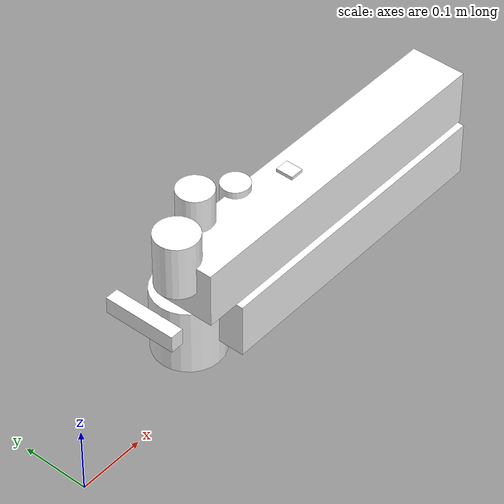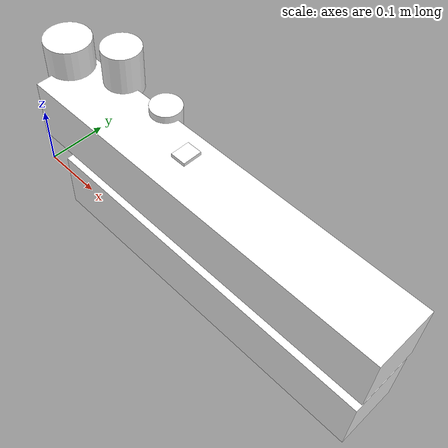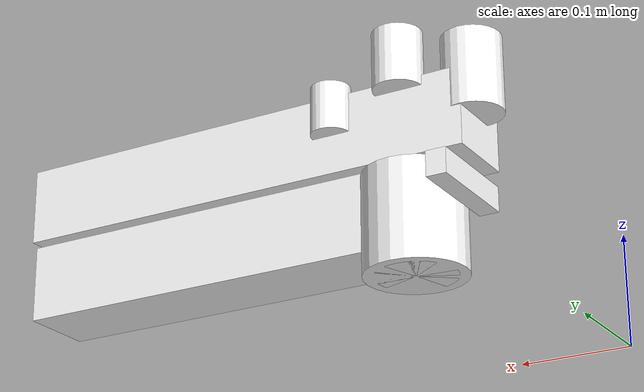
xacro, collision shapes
<?xml version="1.0"?>
<robot xmlns:xacro="http://ros.org/wiki/xacro" name="sekirei">

  <!-- use_real_hw: true=実機(DynamixelHardware), false=モック(mock_components) -->
  <xacro:arg name="use_real_hw" default="false"/>
  <!-- dynamixel_model_folder: launch側から実パスを渡す -->
  <xacro:arg name="dynamixel_model_folder" default="/opt/ros/humble/share/dynamixel_hardware_interface/param/dxl_model"/>

  <link name="base_link">
    <inertial>
      <mass value="1.0"/>
      <origin xyz="0 0 0"/>
      <inertia ixx="0.01" ixy="0.0" ixz="0.0" iyy="0.01" iyz="0.0" izz="0.01"/>
    </inertial>
  </link>

  <link name="arm_base_link">
    <visual>
      <geometry>
        <mesh filename="package://bringup/meshes/r_a_2019_2020_asm1.STL"/>
      </geometry>
      <origin xyz="-0.08 -0.081 0" rpy="1.57 0 0"/>
      <material name="white"><color rgba="1 1 1 1"/></material>
    </visual>
    <collision>
      <geometry><cylinder length="0.1" radius="0.05"/></geometry>
      <origin xyz="0 0 0.05" rpy="0 0 0"/>
    </collision>
    <inertial>
      <mass value="0.5"/>
      <origin xyz="0 0 0.05"/>
      <inertia ixx="0.001" ixy="0.0" ixz="0.0" iyy="0.001" iyz="0.0" izz="0.001"/>
    </inertial>
  </link>

  <joint name="arm_base_link_joint" type="fixed">
    <origin xyz="0.2 0 0.1" rpy="0 0 0"/>
    <parent link="base_link"/>
    <child link="arm_base_link"/>
  </joint>

  <link name="arm1_link">
    <visual>
      <geometry>
        <mesh filename="package://bringup/meshes/r_a_2019_2020_asm2.STL"/>
      </geometry>
      <origin xyz="0 0 0.004" rpy="1.57 0 0"/>
      <material name="white"><color rgba="1 1 1 1"/></material>
    </visual>
    <collision>
      <geometry><cylinder length="0.08" radius="0.04"/></geometry>
      <origin xyz="0 0 0.04" rpy="0 0 0"/>
    </collision>
    <inertial>
      <mass value="0.3"/>
      <origin xyz="0 0 0.04"/>
      <inertia ixx="0.0008" ixy="0.0" ixz="0.0" iyy="0.0008" iyz="0.0" izz="0.0002"/>
    </inertial>
  </link>

  <joint name="arm_joint1" type="revolute">
    <origin xyz="0 0 0" rpy="0 0 0"/>
    <axis xyz="0 0 1"/>
    <parent link="arm_base_link"/>
    <child link="arm1_link"/>
    <limit effort="5" lower="-3.14" upper="3.14" velocity="1.571"/>
  </joint>

  <link name="arm2_link">
    <visual>
      <geometry>
        <mesh filename="package://bringup/meshes/r_a_2019_2020_asm3.STL"/>
      </geometry>
      <origin xyz="0 0 0" rpy="1.57 0 0"/>
      <material name="white"><color rgba="1 1 1 1"/></material>
    </visual>
    <collision>
      <geometry><box size="0.45 0.08 0.08"/></geometry>
      <origin xyz="0.225 0 0" rpy="0 0 0"/>
    </collision>
    <inertial>
      <mass value="0.6"/>
      <origin xyz="0.225 0 0"/>
      <inertia ixx="0.001" ixy="0.0" ixz="0.0" iyy="0.010" iyz="0.0" izz="0.010"/>
    </inertial>
  </link>

  <joint name="arm_joint2" type="revolute">
    <origin xyz="0 -0.048 0.078" rpy="0 0 0"/>
    <axis xyz="0 1 0"/>
    <parent link="arm1_link"/>
    <child link="arm2_link"/>
    <limit effort="5" lower="-3.14" upper="3.14" velocity="1.571"/>
  </joint>

  <link name="arm3_link">
    <visual>
      <geometry>
        <mesh filename="package://bringup/meshes/r_a_2019_2020_asm4.STL"/>
      </geometry>
      <origin xyz="0 0 0" rpy="1.57 0 0"/>
      <material name="white"><color rgba="1 1 1 1"/></material>
    </visual>
    <collision>
      <geometry><box size="0.5 0.08 0.08"/></geometry>
      <origin xyz="-0.25 0 0" rpy="0 0 0"/>
    </collision>
    <inertial>
      <mass value="0.5"/>
      <origin xyz="-0.25 0 0"/>
      <inertia ixx="0.001" ixy="0.0" ixz="0.0" iyy="0.010" iyz="0.0" izz="0.010"/>
    </inertial>
  </link>

  <joint name="arm_joint3" type="revolute">
    <origin xyz="0.45 0.007 0.084" rpy="0 0 0"/>
    <axis xyz="0 -1 0"/>
    <parent link="arm2_link"/>
    <child link="arm3_link"/>
    <limit effort="5" lower="-3.14" upper="3.14" velocity="1.571"/>
  </joint>

  <link name="arm4_link">
    <visual>
      <geometry>
        <mesh filename="package://bringup/meshes/r_a_2019_2020_asm5.STL"/>
      </geometry>
      <origin xyz="0 0 0" rpy="1.57 3.14 0"/>
      <material name="white"><color rgba="1 1 1 1"/></material>
    </visual>
    <collision>
      <geometry><cylinder length="0.08" radius="0.03"/></geometry>
      <origin xyz="0 0 0.04" rpy="0 0 0"/>
    </collision>
    <inertial>
      <mass value="0.2"/>
      <origin xyz="0 0 0.04"/>
      <inertia ixx="0.0005" ixy="0.0" ixz="0.0" iyy="0.0005" iyz="0.0" izz="0.0001"/>
    </inertial>
  </link>

  <joint name="arm_joint4" type="revolute">
    <origin xyz="-0.5 0.012 0" rpy="0 0 0"/>
    <axis xyz="0 -1 0"/>
    <parent link="arm3_link"/>
    <child link="arm4_link"/>
    <limit effort="5" lower="-3.14" upper="3.14" velocity="1.571"/>
  </joint>

  <link name="arm5_link">
    <visual>
      <geometry>
        <mesh filename="package://bringup/meshes/r_a_2019_l_asm6.STL"/>
      </geometry>
      <origin xyz="0 0 0" rpy="1.57 3.14 0"/>
      <material name="white"><color rgba="1 1 1 1"/></material>
    </visual>
    <collision>
      <geometry><cylinder length="0.06" radius="0.025"/></geometry>
      <origin xyz="0 0 0.03" rpy="0 0 0"/>
    </collision>
    <inertial>
      <mass value="0.1"/>
      <origin xyz="0 0 0.03"/>
      <inertia ixx="0.0002" ixy="0.0" ixz="0.0" iyy="0.0002" iyz="0.0" izz="0.0001"/>
    </inertial>
  </link>

  <joint name="arm_joint5" type="revolute">
    <origin xyz="0.06525 0.028 0.029647" rpy="0 0 0"/>
    <axis xyz="0 0 1"/>
    <parent link="arm4_link"/>
    <child link="arm5_link"/>
    <limit effort="5" lower="-1.57" upper="1.57" velocity="1.571"/>
  </joint>

  <link name="arm6_link">
    <visual>
      <geometry>
        <mesh filename="package://bringup/meshes/r_a_2019_l_asm7_ver2.STL"/>
      </geometry>
      <origin xyz="0 0 0" rpy="0 3.14 0"/>
      <material name="white"><color rgba="1 1 1 1"/></material>
    </visual>
    <collision>
      <geometry><cylinder length="0.05" radius="0.02"/></geometry>
      <origin xyz="0 0 0.025" rpy="0 0 0"/>
    </collision>
    <inertial>
      <mass value="0.1"/>
      <origin xyz="0 0 0.025"/>
      <inertia ixx="0.0001" ixy="0.0" ixz="0.0" iyy="0.0001" iyz="0.0" izz="0.0001"/>
    </inertial>
  </link>

  <joint name="arm_joint6" type="revolute">
    <origin xyz="0.07425 0 -0.03" rpy="0 0 0"/>
    <axis xyz="1 0 0"/>
    <parent link="arm5_link"/>
    <child link="arm6_link"/>
    <limit effort="5" lower="-3.14" upper="3.14" velocity="1.571"/>
  </joint>

  <link name="gui_d435_link">
    <visual>
      <geometry>
        <mesh filename="package://bringup/meshes/d435.STL"/>
      </geometry>
      <origin xyz="0 0 0" rpy="1.57 0 -1.57"/>
      <material name="white"><color rgba="1 1 1 1"/></material>
    </visual>
    <collision>
      <geometry><box size="0.02 0.09 0.025"/></geometry>
      <origin xyz="0 0 0" rpy="0 0 0"/>
    </collision>
    <inertial>
      <mass value="0.05"/>
      <origin xyz="0 0 0"/>
      <inertia ixx="0.00001" ixy="0.0" ixz="0.0" iyy="0.00001" iyz="0.0" izz="0.00001"/>
    </inertial>
  </link>

  <joint name="gui_d435_joint" type="fixed">
    <origin xyz="0.066 -0.03105 0" rpy="1.57 0 0"/>
    <parent link="arm6_link"/>
    <child link="gui_d435_link"/>
  </joint>

  <link name="gui_t265_link">
    <visual>
      <geometry>
        <mesh filename="package://bringup/meshes/t265.STL"/>
      </geometry>
      <origin xyz="0 0 0" rpy="1.57 3.14 1.57"/>
      <material name="white"><color rgba="1 1 1 1"/></material>
    </visual>
    <collision>
      <geometry><box size="0.02 0.108 0.025"/></geometry>
      <origin xyz="0 0 0" rpy="0 0 0"/>
    </collision>
    <inertial>
      <mass value="0.05"/>
      <origin xyz="0 0 0"/>
      <inertia ixx="0.00001" ixy="0.0" ixz="0.0" iyy="0.00001" iyz="0.0" izz="0.00001"/>
    </inertial>
  </link>

  <joint name="gui_t265_joint" type="fixed">
    <origin xyz="-0.05945 0.02 0.073" rpy="3.14 3.14 0"/>
    <parent link="arm1_link"/>
    <child link="gui_t265_link"/>
  </joint>

  <link name="gripper_left_link"/>
  <link name="gripper_right_link"/>

  <joint name="gripper_joint7" type="revolute">
    <parent link="arm6_link"/>
    <child link="gripper_left_link"/>
    <origin xyz="0 0 0" rpy="0 0 0"/>
    <axis xyz="0 1 0"/>
    <limit lower="-1.57" upper="1.57" effort="5" velocity="1.0"/>
  </joint>

  <joint name="gripper_joint8" type="revolute">
    <parent link="arm6_link"/>
    <child link="gripper_right_link"/>
    <origin xyz="0 0 0" rpy="0 0 0"/>
    <axis xyz="0 1 0"/>
    <limit lower="-1.57" upper="1.57" effort="5" velocity="1.0"/>
  </joint>

  <!-- ================================================================
       ros2_control
       ================================================================ -->

  <xacro:if value="$(arg use_real_hw)">
    <ros2_control name="sekirei_dynamixel_hw" type="system">
      <hardware>
        <plugin>dynamixel_hardware_interface/DynamixelHardware</plugin>
        <param name="port_name">/dev/dynamixel_arm</param>
        <param name="baud_rate">1000000</param>
        <param name="error_timeout_ms">1000</param>
        <param name="number_of_joints">8</param>
        <param name="number_of_transmissions">8</param>
        <param name="dynamixel_model_folder">$(arg dynamixel_model_folder)</param>
        <param name="disable_torque_at_init">true</param>
        <param name="ignore_hardware_error">true</param>
        <param name="ping_retry_count">3</param>
        <param name="joint_to_transmission_matrix">1,0,0,0,0,0,0,0, 0,1,0,0,0,0,0,0, 0,0,1,0,0,0,0,0, 0,0,0,1,0,0,0,0, 0,0,0,0,1,0,0,0, 0,0,0,0,0,1,0,0, 0,0,0,0,0,0,1,0, 0,0,0,0,0,0,0,1</param>
        <param name="transmission_to_joint_matrix">1,0,0,0,0,0,0,0, 0,1,0,0,0,0,0,0, 0,0,1,0,0,0,0,0, 0,0,0,1,0,0,0,0, 0,0,0,0,1,0,0,0, 0,0,0,0,0,1,0,0, 0,0,0,0,0,0,1,0, 0,0,0,0,0,0,0,1</param>
      </hardware>

      <joint name="arm_joint1">
        <command_interface name="position"/>
        <state_interface name="position"/>
        <state_interface name="velocity"/>
      </joint>
      <joint name="arm_joint2">
        <command_interface name="position"/>
        <state_interface name="position"/>
        <state_interface name="velocity"/>
      </joint>
      <joint name="arm_joint3">
        <command_interface name="position"/>
        <state_interface name="position"/>
        <state_interface name="velocity"/>
      </joint>
      <joint name="arm_joint4">
        <command_interface name="position"/>
        <state_interface name="position"/>
        <state_interface name="velocity"/>
      </joint>
      <joint name="arm_joint5">
        <command_interface name="position"/>
        <state_interface name="position"/>
        <state_interface name="velocity"/>
      </joint>
      <joint name="arm_joint6">
        <command_interface name="position"/>
        <state_interface name="position"/>
        <state_interface name="velocity"/>
      </joint>
      <joint name="gripper_joint7">
        <command_interface name="position"/>
        <state_interface name="position"/>
        <state_interface name="velocity"/>
        <state_interface name="effort"/>
      </joint>
      <joint name="gripper_joint8">
        <command_interface name="position"/>
        <state_interface name="position"/>
        <state_interface name="velocity"/>
        <state_interface name="effort"/>
      </joint>

      <!-- Dynamixel IDs: J1=21, J2=22, J3=23, J4=24, J5=25, J6=26, Gripper=27,28 -->
      <!-- Drive Mode 1=reverse, 0=normal -->
      <gpio name="dxl1"><param name="type">dxl</param><param name="ID">21</param>
        <command_interface name="Goal Position"/><state_interface name="Present Position"/>
        <state_interface name="Present Velocity"/><state_interface name="Present Current"/>
        <param name="Position P Gain">800</param><param name="Position I Gain">0</param>
        <param name="Position D Gain">4000</param><param name="Drive Mode">1</param>
      </gpio>
      <gpio name="dxl2"><param name="type">dxl</param><param name="ID">22</param>
        <command_interface name="Goal Position"/><state_interface name="Present Position"/>
        <state_interface name="Present Velocity"/><state_interface name="Present Current"/>
        <param name="Position P Gain">800</param><param name="Position I Gain">0</param>
        <param name="Position D Gain">4000</param><param name="Drive Mode">0</param>
      </gpio>
      <gpio name="dxl3"><param name="type">dxl</param><param name="ID">23</param>
        <command_interface name="Goal Position"/><state_interface name="Present Position"/>
        <state_interface name="Present Velocity"/><state_interface name="Present Current"/>
        <param name="Position P Gain">800</param><param name="Position I Gain">0</param>
        <param name="Position D Gain">4000</param><param name="Drive Mode">1</param>
      </gpio>
      <gpio name="dxl4"><param name="type">dxl</param><param name="ID">24</param>
        <command_interface name="Goal Position"/><state_interface name="Present Position"/>
        <state_interface name="Present Velocity"/><state_interface name="Present Current"/>
        <param name="Position P Gain">800</param><param name="Position I Gain">0</param>
        <param name="Position D Gain">4000</param><param name="Drive Mode">0</param>
      </gpio>
      <gpio name="dxl5"><param name="type">dxl</param><param name="ID">25</param>
        <command_interface name="Goal Position"/><state_interface name="Present Position"/>
        <state_interface name="Present Velocity"/><state_interface name="Present Current"/>
        <param name="Position P Gain">800</param><param name="Position I Gain">0</param>
        <param name="Position D Gain">4000</param><param name="Drive Mode">0</param>
      </gpio>
      <gpio name="dxl6"><param name="type">dxl</param><param name="ID">26</param>
        <command_interface name="Goal Position"/><state_interface name="Present Position"/>
        <state_interface name="Present Velocity"/><state_interface name="Present Current"/>
        <param name="Position P Gain">800</param><param name="Position I Gain">0</param>
        <param name="Position D Gain">4000</param><param name="Drive Mode">0</param>
      </gpio>
      <gpio name="dxl7"><param name="type">dxl</param><param name="ID">27</param>
        <command_interface name="Goal Position"/><state_interface name="Present Position"/>
        <state_interface name="Present Velocity"/><state_interface name="Present Current"/>
        <param name="Position P Gain">800</param><param name="Position I Gain">0</param>
        <param name="Position D Gain">4000</param><param name="Drive Mode">0</param>
      </gpio>
      <gpio name="dxl8"><param name="type">dxl</param><param name="ID">28</param>
        <command_interface name="Goal Position"/><state_interface name="Present Position"/>
        <state_interface name="Present Velocity"/><state_interface name="Present Current"/>
        <param name="Position P Gain">800</param><param name="Position I Gain">0</param>
        <param name="Position D Gain">4000</param><param name="Drive Mode">0</param>
      </gpio>
    </ros2_control>
  </xacro:if>

  <xacro:unless value="$(arg use_real_hw)">
    <ros2_control name="sekirei_dynamixel_hw" type="system">
      <hardware>
        <plugin>mock_components/GenericSystem</plugin>
        <param name="mock_sensor_commands">false</param>
        <param name="state_following_offset">0.0</param>
      </hardware>
      <joint name="arm_joint1">
        <command_interface name="position"><param name="min">-3.14</param><param name="max">3.14</param></command_interface>
        <state_interface name="position"><param name="initial_value">0.0</param></state_interface>
        <state_interface name="velocity"/><state_interface name="effort"><param name="initial_value">0.0</param></state_interface>
      </joint>
      <joint name="arm_joint2">
        <command_interface name="position"><param name="min">-3.14</param><param name="max">3.14</param></command_interface>
        <state_interface name="position"><param name="initial_value">0.0</param></state_interface>
        <state_interface name="velocity"/><state_interface name="effort"><param name="initial_value">0.0</param></state_interface>
      </joint>
      <joint name="arm_joint3">
        <command_interface name="position"><param name="min">-3.14</param><param name="max">3.14</param></command_interface>
        <state_interface name="position"><param name="initial_value">0.0</param></state_interface>
        <state_interface name="velocity"/><state_interface name="effort"><param name="initial_value">0.0</param></state_interface>
      </joint>
      <joint name="arm_joint4">
        <command_interface name="position"><param name="min">-3.14</param><param name="max">3.14</param></command_interface>
        <state_interface name="position"><param name="initial_value">0.0</param></state_interface>
        <state_interface name="velocity"/><state_interface name="effort"><param name="initial_value">0.0</param></state_interface>
      </joint>
      <joint name="arm_joint5">
        <command_interface name="position"><param name="min">-1.57</param><param name="max">1.57</param></command_interface>
        <state_interface name="position"><param name="initial_value">0.0</param></state_interface>
        <state_interface name="velocity"/><state_interface name="effort"><param name="initial_value">0.0</param></state_interface>
      </joint>
      <joint name="arm_joint6">
        <command_interface name="position"><param name="min">-3.14</param><param name="max">3.14</param></command_interface>
        <state_interface name="position"><param name="initial_value">0.0</param></state_interface>
        <state_interface name="velocity"/><state_interface name="effort"><param name="initial_value">0.0</param></state_interface>
      </joint>
      <joint name="gripper_joint7">
        <command_interface name="position"><param name="min">-1.57</param><param name="max">1.57</param></command_interface>
        <state_interface name="position"><param name="initial_value">0.0</param></state_interface>
        <state_interface name="velocity"/><state_interface name="effort"><param name="initial_value">0.0</param></state_interface>
      </joint>
      <joint name="gripper_joint8">
        <command_interface name="position"><param name="min">-1.57</param><param name="max">1.57</param></command_interface>
        <state_interface name="position"><param name="initial_value">0.0</param></state_interface>
        <state_interface name="velocity"/><state_interface name="effort"><param name="initial_value">0.0</param></state_interface>
      </joint>
    </ros2_control>
  </xacro:unless>

</robot>
